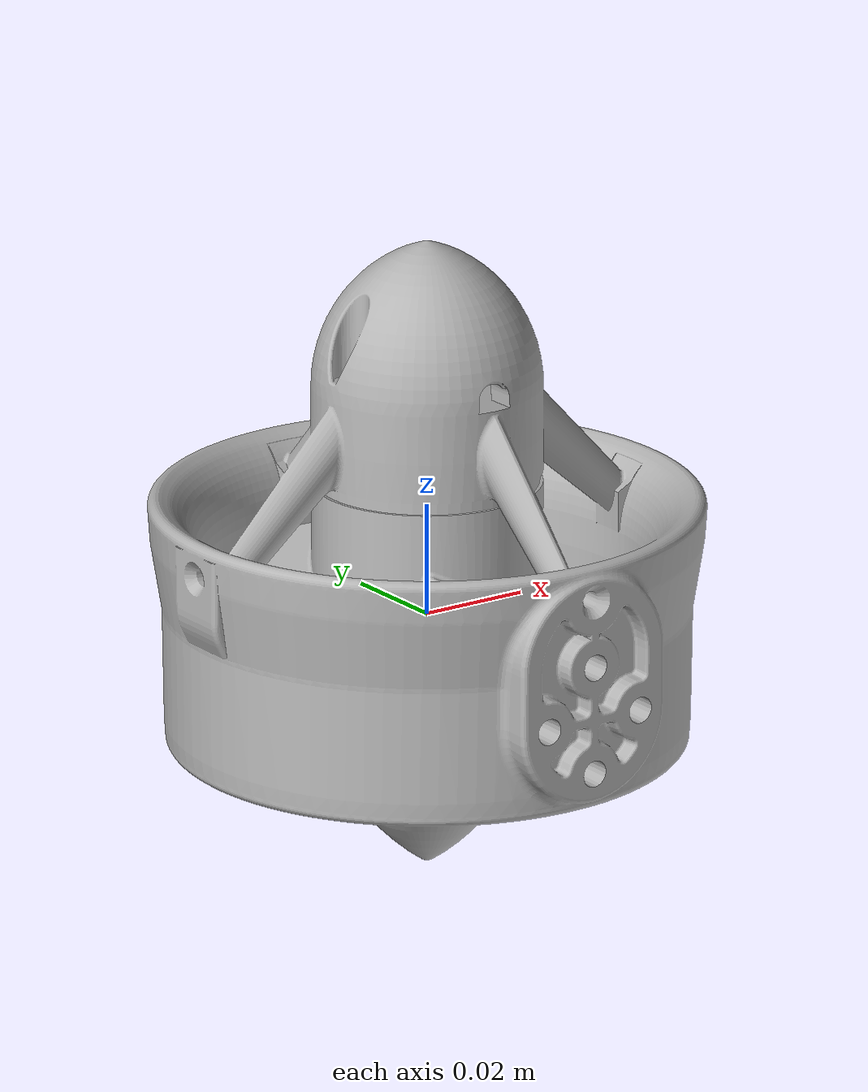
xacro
<?xml version="1.0" ?>
<robot name="T200-ASM-CW-THRUSTER-R1.0003.f3d" xmlns:xacro="http://www.ros.org/wiki/xacro">

<xacro:include filename="$(find T200-ASM-CW-THRUSTER-R1.0003.f3d_description)/urdf/materials.xacro" />
<xacro:include filename="$(find T200-ASM-CW-THRUSTER-R1.0003.f3d_description)/urdf/T200-ASM-CW-THRUSTER-R1.0003.f3d.trans" />
<xacro:include filename="$(find T200-ASM-CW-THRUSTER-R1.0003.f3d_description)/urdf/T200-ASM-CW-THRUSTER-R1.0003.f3d.gazebo" />
<link name="base_link">
  <inertial>
    <origin xyz="1.8918632576612529e-07 -0.0005296019892087875 0.0041668082919514215" rpy="0 0 0"/>
    <mass value="0.1799349505955563"/>
    <inertia ixx="0.00016" iyy="0.000156" izz="0.000177" ixy="-0.0" iyz="-1e-06" ixz="-0.0"/>
  </inertial>
  <visual>
    <origin xyz="0 0 0" rpy="0 0 0"/>
    <geometry>
      <mesh filename="package://T200-ASM-CW-THRUSTER-R1.0003.f3d_description/meshes/base_link.stl" scale="0.001 0.001 0.001"/>
    </geometry>
    <material name="silver"/>
  </visual>
  <collision>
    <origin xyz="0 0 0" rpy="0 0 0"/>
    <geometry>
      <mesh filename="package://T200-ASM-CW-THRUSTER-R1.0003.f3d_description/meshes/base_link.stl" scale="0.001 0.001 0.001"/>
    </geometry>
  </collision>
</link>

<link name="Component1_1">
  <inertial>
    <origin xyz="-7.645665748929687e-09 4.203217032496231e-08 0.011172040778443974" rpy="0 0 0"/>
    <mass value="0.00795796741725928"/>
    <inertia ixx="2e-06" iyy="2e-06" izz="4e-06" ixy="0.0" iyz="-0.0" ixz="0.0"/>
  </inertial>
  <visual>
    <origin xyz="0.0 0.0 0.0045" rpy="0 0 0"/>
    <geometry>
      <mesh filename="package://T200-ASM-CW-THRUSTER-R1.0003.f3d_description/meshes/Component1_1.stl" scale="0.001 0.001 0.001"/>
    </geometry>
    <material name="silver"/>
  </visual>
  <collision>
    <origin xyz="0.0 0.0 0.0045" rpy="0 0 0"/>
    <geometry>
      <mesh filename="package://T200-ASM-CW-THRUSTER-R1.0003.f3d_description/meshes/Component1_1.stl" scale="0.001 0.001 0.001"/>
    </geometry>
  </collision>
</link>

<joint name="Revolute 1" type="continuous">
  <origin xyz="0.0 0.0 -0.0045" rpy="0 0 0"/>
  <parent link="base_link"/>
  <child link="Component1_1"/>
  <axis xyz="0.0 0.0 1.0"/>
</joint>

</robot>

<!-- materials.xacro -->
<robot name="T200-ASM-CW-THRUSTER-R1.0003.f3d" xmlns:xacro="http://www.ros.org/wiki/xacro" >

<material name="silver">
  <color rgba="0.700 0.700 0.700 1.000"/>
</material>

</robot>

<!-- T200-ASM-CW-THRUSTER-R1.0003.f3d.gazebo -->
<robot name="T200-ASM-CW-THRUSTER-R1.0003.f3d" xmlns:xacro="http://www.ros.org/wiki/xacro" >

<xacro:property name="body_color" value="Gazebo/Silver" />

<gazebo>
  <plugin name="control" filename="libgazebo_ros_control.so"/>
</gazebo>
<gazebo reference="base_link">
  <material>${body_color}</material>
  <mu1>0.2</mu1>
  <mu2>0.2</mu2>
  <selfCollide>true</selfCollide>
  <gravity>true</gravity>
</gazebo>

<gazebo reference="Component1_1">
  <material>${body_color}</material>
  <mu1>0.2</mu1>
  <mu2>0.2</mu2>
  <selfCollide>true</selfCollide>
</gazebo>

</robot>
